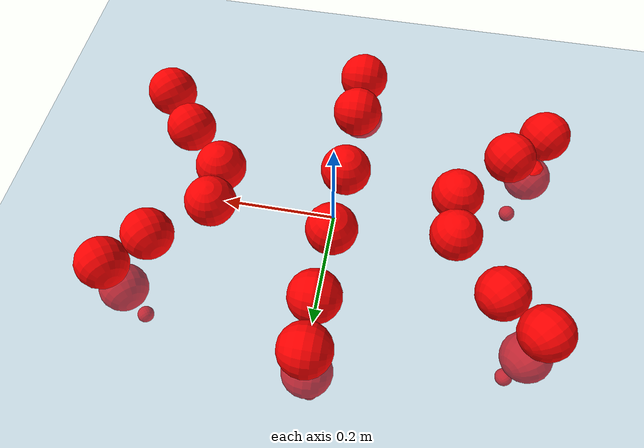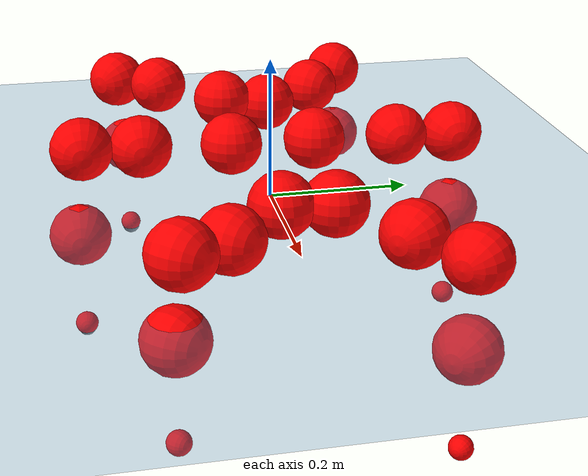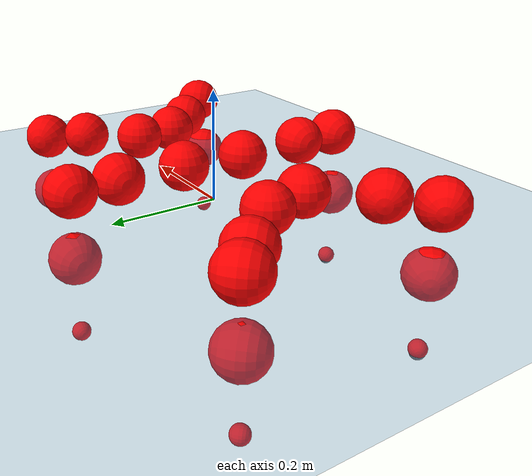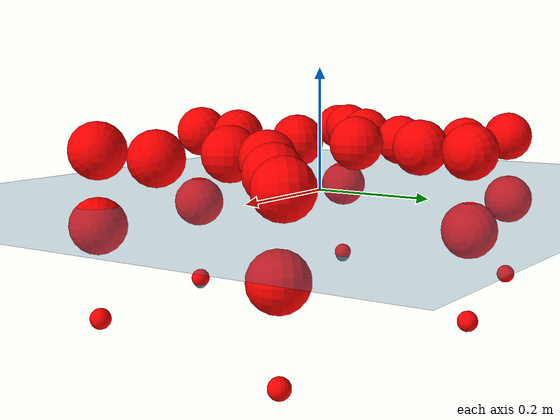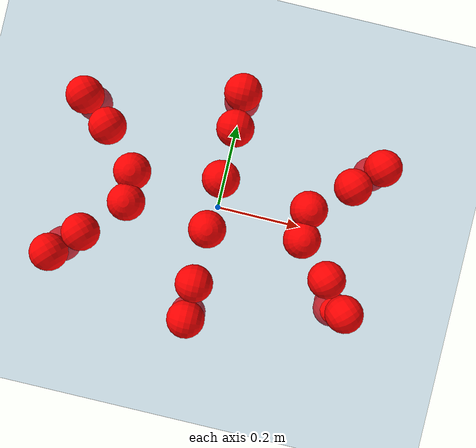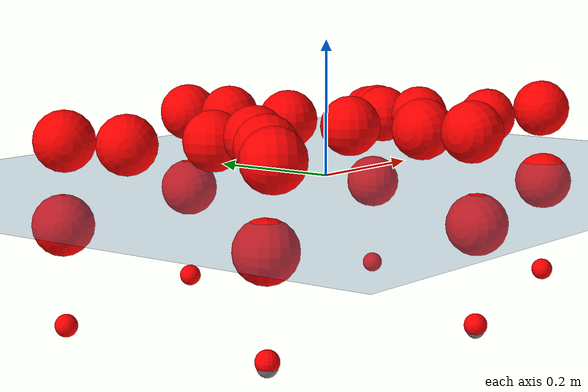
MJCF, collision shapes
<mujoco model="Golem">
  <compiler angle="radian" assetdir="assets" balanceinertia="true" inertiafromgeom="false"/>

  <option timestep="0.005" density="1.2" viscosity="2e-05"/>

  <size nkey="1"/>

  <visual>
    <quality shadowsize="8192"/>
    <map shadowclip="0.5"/>
  </visual>

  <default>
    <default class="/">
      <joint armature="0.01" damping="0.01" frictionloss="0.01"/>
      <geom contype="0" conaffinity="0" group="1" solref="-1000 -80"/>
      <site size="0.01 0.005 0.005" group="5"/>
      <general forcelimited="true" biastype="affine" gainprm="25" biasprm="0 -25 -0.5"/>
      <default class="visual">
        <geom type="mesh" group="2"/>
      </default>
      <default class="collision">
        <geom group="3"/>
      </default>
      <default class="foot">
        <geom size="0.01 0 0" condim="6" group="4" priority="1" solimp="0.015 1 0.01"/>
      </default>
      <default class="reward_collision_sphere">
        <geom group="5" rgba="1 0 0 1"/>
      </default>
    </default>
  </default>

  <asset>
    <texture type="skybox" colorspace="auto" name="//unnamed_texture_0" builtin="gradient" rgb1="0.95 0.95 0.95" rgb2="0.95 0.95 0.95" width="100" height="600"/>
    <texture type="2d" colorspace="auto" name="texplane" builtin="checker" rgb1="0.345 0.575 0.748" rgb2="0.345 0.575 0.748" markrgb="1 1 1" width="512" height="512"/>
    <material name="MatPlane" class="/" texture="texplane" texuniform="true" texrepeat="2 2" specular="0.9"/>
    <mesh name="body" class="/" file="body.stl" scale="0.001 0.001 0.001"/>
    <mesh name="coxa" class="/" file="coxa.stl" scale="0.001 0.001 0.001"/>
    <mesh name="femur" class="/" file="femur.stl" scale="0.001 0.001 0.001"/>
    <mesh name="tibia" class="/" file="tibia.stl" scale="0.001 0.001 0.001"/>
    <mesh name="tarsus" class="/" file="tarsus.stl" scale="0.001 0.001 0.001"/>
  </asset>

  <worldbody>
    <geom name="floor" class="/" size="100 100 0.125" type="plane" group="0" material="MatPlane"/>
    <light name="toplight_shadow" class="/" pos="0 0 5" dir="0.0990148 0.0990148 -0.990148" type="directional" ambient="0.04 0.04 0.04" diffuse="0.55 0.55 0.55" specular="0.12 0.12 0.12"/>
    <light name="toplight_fill" class="/" pos="0 0 5" dir="0.0990148 0.0990148 -0.990148" type="directional" castshadow="false" ambient="0.04 0.04 0.04" diffuse="0.3 0.3 0.3" specular="0.08 0.08 0.08"/>
    <body name="trunk" pos="-0.000273945 -0.000292671 0.00572103" quat="0.999993 -0.000467875 -0.00304979 -0.00229397">
      <inertial pos="-0.002837 0.00293547 -0.00690791" quat="0.999957 0.00664389 0.00581253 -0.00299645" mass="5.51606" diaginertia="0.0411008 0.00295914 0.022292"/>
      <joint name="//unnamed_joint_0" type="free"/>
      <geom name="//unnamed_geom_1" class="/" pos="0 0 0.0751791" quat="1 0 0 0" type="mesh" rgba="0.9 0.9 0.9 1" mesh="body"/>
      <site name="imu" class="/" pos="0.176359 -0.040328 0.0626104" size="0.0108696"/>
      <camera name="track" class="/" pos="0 -1.5386 0" quat="0.707107 0.707107 0 0" mode="trackcom"/>
      <camera name="ego_camera" class="/" pos="0.171196 0 0.117467" quat="-0.5 -0.5 0.5 0.5"/>
      <body name="coxa_RR" pos="-0.231778 -0.0641352 0.0760595" quat="0.385676 -0.00352422 -0.00303918 -0.922623">
        <inertial pos="-0.00691763 -0.00164591 0.00468305" quat="0.999872 0.000742407 0.000650055 -0.0159983" mass="0.232513" diaginertia="0.0408478 0.0024189 0.0193237"/>
        <joint name="coxa_joint_RR" class="/" pos="0 0 0" axis="-0.0155779 -0.00136021 -0.999878" range="-3.20097 3.17055" armature="0.0114959" damping="0.012389" frictionloss="0.00953102"/>
        <geom name="//unnamed_geom_2" class="/" type="mesh" rgba="0.2 0.2 0.2 1" mesh="coxa"/>
        <geom name="//unnamed_geom_3" class="reward_collision_sphere" size="0.0434782" pos="-0.0395069 0 0"/>
        <body name="femur_RR" pos="0.083634 0.0036111 0.00133484" quat="0.496287 -0.500959 0.499624 0.503106">
          <inertial pos="-0.000550664 -0.0107087 -0.00434241" quat="0.999619 -0.0224202 -0.00967743 -0.0128405" mass="0.290303" diaginertia="0.0411696 0.00312375 0.0248718"/>
          <joint name="femur_joint_RR" class="/" pos="0 0 0" axis="0.000925361 0.00130015 -0.999999" stiffness="0.00432994" range="-3.17648 3.17685" armature="0.00673165" damping="0.00329004" frictionloss="0.0105695"/>
          <geom name="//unnamed_geom_4" class="/" type="mesh" rgba="0.9 0.9 0.9 1" mesh="femur"/>
          <geom name="//unnamed_geom_5" class="reward_collision_sphere" size="0.0434782"/>
          <body name="tibia_RR" pos="0.00541046 -0.086514 -0.000498713" quat="-8.85079e-05 1 -0.000618405 -2.35962e-05">
            <inertial pos="-0.00169028 -0.00976129 -2.1034e-05" quat="1 -0.000351771 0.000101276 -0.000859686" mass="0.27194" diaginertia="0.0419759 0.00285422 0.0238026"/>
            <joint name="tibia_joint_RR" class="/" pos="0 0 0" axis="0.0443374 0.0145806 0.99891" stiffness="0.0320989" range="-3.33557 3.13076" armature="0.01366" damping="0.0393238" frictionloss="0.0045612"/>
            <geom name="//unnamed_geom_6" class="/" type="mesh" rgba="0.2 0.2 0.2 1" mesh="tibia"/>
            <geom name="//unnamed_geom_7" class="reward_collision_sphere" size="0.0434782"/>
            <body name="tarsus_RR" pos="0.115615 -0.0070607 0.00982881" quat="0.999998 -0.00213797 7.44531e-05 -0.000518194">
              <inertial pos="0.0756382 0.000197219 -0.00640896" quat="0.500607 0.514497 0.486883 0.497624" mass="0.283794" diaginertia="0.044127 0.00304174 0.0212655"/>
              <joint name="tarsus_joint_RR" class="/" pos="0 0 0" axis="-0.00145595 -0.0284801 0.999593" range="-3.04709 3.11379" armature="0.0120885" damping="0" frictionloss="0.0112971"/>
              <geom name="//unnamed_geom_8" class="/" type="mesh" rgba="0.9 0.9 0.9 1" mesh="tarsus"/>
              <geom name="foot_1" class="foot" size="0.0141641" pos="0.147492 0 0" quat="0 -0.707107 0 0.707107"/>
              <geom name="//unnamed_geom_10" class="reward_collision_sphere" size="0.0434782"/>
              <geom name="//unnamed_geom_11" class="reward_collision_sphere" size="0.0163043" pos="0.141566 0 0"/>
              <site name="foot_1" class="foot" pos="0.147492 0 0" quat="0 -0.707107 0 0.707107" size="0.0108696"/>
            </body>
          </body>
        </body>
      </body>
      <body name="coxa_RM" pos="-0.0111835 -0.0925401 0.072854" quat="0.707474 -0.00011316 -5.62587e-05 -0.706739">
        <inertial pos="0.00145126 0.000558006 0.00821417" quat="0.998509 -0.00820063 -0.00477881 0.0537542" mass="0.232342" diaginertia="0.0348096 0.00203265 0.0175476"/>
        <joint name="coxa_joint_RM" class="/" pos="0 0 0" axis="0.0378666 -0.0348217 -0.998676" stiffness="0.0182339" range="-3.12671 3.22534" armature="0.0115243" damping="0.012638" frictionloss="0.00768691"/>
        <geom name="//unnamed_geom_12" class="/" type="mesh" rgba="0.2 0.2 0.2 1" mesh="coxa"/>
        <geom name="//unnamed_geom_13" class="reward_collision_sphere" size="0.0434782" pos="-0.0395069 0 0"/>
        <body name="femur_RM" pos="0.0866576 -9.95368e-05 0.00449815" quat="0.500167 -0.500314 0.50031 0.499208">
          <inertial pos="0.00107513 -0.00671456 0.00167929" quat="0.999999 0.000913624 -0.0012672 0.000510753" mass="0.245483" diaginertia="0.0442709 0.00266686 0.0237459"/>
          <joint name="femur_joint_RM" class="/" pos="0 0 0" axis="0.00298034 0.00470037 -0.999985" stiffness="0.0356605" range="-3.29447 3.05858" armature="0.00739089" damping="0.0130914" frictionloss="0.00600979"/>
          <geom name="//unnamed_geom_14" class="/" type="mesh" rgba="0.9 0.9 0.9 1" mesh="femur"/>
          <geom name="//unnamed_geom_15" class="reward_collision_sphere" size="0.0434782"/>
          <body name="tibia_RM" pos="-0.0019604 -0.0816317 0.000389555" quat="-0.000606616 1 -0.000189873 -0.000297855">
            <inertial pos="0.00169081 -4.96852e-05 -0.00719921" quat="1 0.000519015 -0.000456905 -0.000169541" mass="0.225938" diaginertia="0.0387497 0.00265156 0.0235153"/>
            <joint name="tibia_joint_RM" class="/" pos="0 0 0" axis="-0.0453064 0.0156399 0.998851" range="-3.19931 3.01519" armature="0.0162754" damping="0.0136692" frictionloss="0.00562601"/>
            <geom name="//unnamed_geom_16" class="/" type="mesh" rgba="0.2 0.2 0.2 1" mesh="tibia"/>
            <geom name="//unnamed_geom_17" class="reward_collision_sphere" size="0.0434782"/>
            <body name="tarsus_RM" pos="0.127478 0.00872102 -0.000517863" quat="0.999995 0.00218325 -0.00214003 -0.00110061">
              <inertial pos="0.08117 -9.08481e-05 0.00166341" quat="0.505767 0.495006 0.496646 0.502505" mass="0.206047" diaginertia="0.0341826 0.00236471 0.0195272"/>
              <joint name="tarsus_joint_RM" class="/" pos="0 0 0" axis="0.00381386 0.0133043 0.999904" stiffness="0.0001486" range="-3.18788 3.14459" armature="0.0128158" damping="0" frictionloss="0.0105368"/>
              <geom name="//unnamed_geom_18" class="/" type="mesh" rgba="0.9 0.9 0.9 1" mesh="tarsus"/>
              <geom name="foot_2" class="foot" size="0.0130166" pos="0.147492 0 0" quat="0 -0.707107 0 0.707107"/>
              <geom name="//unnamed_geom_20" class="reward_collision_sphere" size="0.0434782"/>
              <geom name="//unnamed_geom_21" class="reward_collision_sphere" size="0.0163043" pos="0.141566 0 0"/>
              <site name="foot_2" class="foot" pos="0.147492 0 0" quat="0 -0.707107 0 0.707107" size="0.0108696"/>
            </body>
          </body>
        </body>
      </body>
      <body name="coxa_RF" pos="0.231672 -0.0534973 0.067706" quat="0.923603 0.000242231 0.000213152 -0.383351">
        <inertial pos="0.00998859 0.00160722 0.00714164" quat="0.999631 0.0271245 0.000883794 0.00146797" mass="0.247738" diaginertia="0.0332012 0.00231671 0.0189166"/>
        <joint name="coxa_joint_RF" class="/" pos="0 0 0" axis="-0.000648268 0.00107373 -0.999999" stiffness="0.0373157" range="-3.10864 3.24963" armature="0.0107651" damping="0" frictionloss="0.00591867"/>
        <geom name="//unnamed_geom_22" class="/" type="mesh" rgba="0.2 0.2 0.2 1" mesh="coxa"/>
        <geom name="//unnamed_geom_23" class="reward_collision_sphere" size="0.0434782" pos="-0.0395069 0 0"/>
        <body name="femur_RF" pos="0.0687443 0.00101551 -0.0051424" quat="0.500153 -0.502626 0.500043 0.497163">
          <inertial pos="0.00054307 0.00157317 0.000791931" quat="0.999746 0.0140508 0.0161357 0.00709215" mass="0.250745" diaginertia="0.0432222 0.00284575 0.0238977"/>
          <joint name="femur_joint_RF" class="/" pos="0 0 0" axis="-0.00527063 -0.00898179 -0.999946" range="-3.2105 3.15387" armature="0.0110305" damping="0.0168421" frictionloss="0.0113534"/>
          <geom name="//unnamed_geom_24" class="/" type="mesh" rgba="0.9 0.9 0.9 1" mesh="femur"/>
          <geom name="//unnamed_geom_25" class="reward_collision_sphere" size="0.0434782"/>
          <body name="tibia_RF" pos="-0.0117053 -0.0841225 -0.00797841" quat="3.08048e-05 0.999999 0.000690126 0.00107474">
            <inertial pos="-0.00205047 0.00940724 0.00757315" quat="0.998998 0.0277673 -0.016521 -0.0309526" mass="0.281652" diaginertia="0.0465839 0.00309243 0.0221947"/>
            <joint name="tibia_joint_RF" class="/" pos="0 0 0" axis="-0.0399797 0.0196354 0.999008" stiffness="0.0572418" range="-3.06019 3.16588" armature="0.0118796" damping="0.0376867" frictionloss="0.0136427"/>
            <geom name="//unnamed_geom_26" class="/" type="mesh" rgba="0.2 0.2 0.2 1" mesh="tibia"/>
            <geom name="//unnamed_geom_27" class="reward_collision_sphere" size="0.0434782"/>
            <body name="tarsus_RF" pos="0.112745 0.00171042 0.0103955" quat="1 -2.55508e-05 3.70971e-05 2.82716e-05">
              <inertial pos="0.0784421 0.000214617 -0.00128593" quat="0.490923 0.502627 0.499802 0.506516" mass="0.274014" diaginertia="0.0432787 0.00310148 0.0235324"/>
              <joint name="tarsus_joint_RF" class="/" pos="0 0 0" axis="-0.0391524 0.0388616 0.998477" range="-3.1508 3.14629" armature="0.0121204" damping="0.010479" frictionloss="0.00828663"/>
              <geom name="//unnamed_geom_28" class="/" type="mesh" rgba="0.9 0.9 0.9 1" mesh="tarsus"/>
              <geom name="foot_3" class="foot" size="0.00934129" pos="0.147492 0 0" quat="0 -0.707107 0 0.707107"/>
              <geom name="//unnamed_geom_30" class="reward_collision_sphere" size="0.0434782"/>
              <geom name="//unnamed_geom_31" class="reward_collision_sphere" size="0.0163043" pos="0.141566 0 0"/>
              <site name="foot_3" class="foot" pos="0.147492 0 0" quat="0 -0.707107 0 0.707107" size="0.0108696"/>
            </body>
          </body>
        </body>
      </body>
      <body name="coxa_LR" pos="-0.236603 0.0626015 0.0652102" quat="0.385231 0.00204977 0.00246858 0.922815">
        <inertial pos="0.00399033 -0.00774723 0.00842677" quat="0.999999 -0.000164315 -0.000269634 0.00102717" mass="0.251663" diaginertia="0.040452 0.00289674 0.0224637"/>
        <joint name="coxa_joint_LR" class="/" pos="0 0 0" axis="-0.0114534 -0.0333661 -0.999378" range="-3.06919 2.95429" armature="0.0101396" damping="0.0159714" frictionloss="0.00729539"/>
        <geom name="//unnamed_geom_32" class="/" type="mesh" rgba="0.2 0.2 0.2 1" mesh="coxa"/>
        <geom name="//unnamed_geom_33" class="reward_collision_sphere" size="0.0434782" pos="-0.0395069 0 0"/>
        <body name="femur_LR" pos="0.0795831 -0.00480418 -0.00426355" quat="0.499833 -0.498966 0.500888 0.50031">
          <inertial pos="0.00109715 -0.00648227 -0.0018638" quat="0.998732 -0.0327927 0.0218761 0.031307" mass="0.270791" diaginertia="0.036458 0.00277614 0.0241978"/>
          <joint name="femur_joint_LR" class="/" pos="0 0 0" axis="0.0177977 0.0576864 0.998176" range="-3.06312 3.08619" armature="0.00510685" damping="0" frictionloss="0.0118263"/>
          <geom name="//unnamed_geom_34" class="/" type="mesh" rgba="0.9 0.9 0.9 1" mesh="femur"/>
          <geom name="//unnamed_geom_35" class="reward_collision_sphere" size="0.0434782"/>
          <body name="tibia_LR" pos="-0.00813585 -0.0848593 0.00682188" quat="0.00104535 0.999999 0.000118466 0.000272048">
            <inertial pos="0.00419033 -0.00216136 -0.00744649" quat="0.999508 0.0195224 -0.0110165 -0.0219604" mass="0.226269" diaginertia="0.0392448 0.00255626 0.0230347"/>
            <joint name="tibia_joint_LR" class="/" pos="0 0 0" axis="-0.00794681 -0.000428591 -0.999968" stiffness="0.00389654" range="-3.34153 3.00574" armature="0.0153181" damping="0.0145911" frictionloss="0.0106651"/>
            <geom name="//unnamed_geom_36" class="/" type="mesh" rgba="0.2 0.2 0.2 1" mesh="tibia"/>
            <geom name="//unnamed_geom_37" class="reward_collision_sphere" size="0.0434782"/>
            <body name="tarsus_LR" pos="0.116194 0.00459073 -0.000339173" quat="1 -0.000114232 -2.34597e-05 -0.000217511">
              <inertial pos="0.0779945 0.00866997 -4.26657e-06" quat="0.499909 0.498995 0.501947 0.499143" mass="0.294264" diaginertia="0.0406344 0.00236438 0.0216589"/>
              <joint name="tarsus_joint_LR" class="/" pos="0 0 0" axis="0.00498888 -0.00357103 -0.999981" range="-3.13387 3.03376" armature="0.0107277" damping="0.0224278" frictionloss="0.0136329"/>
              <geom name="//unnamed_geom_38" class="/" type="mesh" rgba="0.9 0.9 0.9 1" mesh="tarsus"/>
              <geom name="foot_4" class="foot" size="0.00880173" pos="0.147492 0 0" quat="0.707107 0 -0.707107 0"/>
              <geom name="//unnamed_geom_40" class="reward_collision_sphere" size="0.0434782"/>
              <geom name="//unnamed_geom_41" class="reward_collision_sphere" size="0.0163043" pos="0.141566 0 0"/>
              <site name="foot_4" class="foot" pos="0.147492 0 0" quat="0.707107 0 -0.707107 0" size="0.0108696"/>
            </body>
          </body>
        </body>
      </body>
      <body name="coxa_LM" pos="-0.0077045 0.104457 0.0741448" quat="0.706994 0.000423281 5.28996e-05 0.70722">
        <inertial pos="0.000811353 0.00124357 0.00984665" quat="1 -0.00010774 9.7502e-05 2.82814e-05" mass="0.26176" diaginertia="0.0372243 0.00259986 0.0217896"/>
        <joint name="coxa_joint_LM" class="/" pos="0 0 0" axis="0.0221706 0.00310566 -0.999749" stiffness="0.00171217" range="-3.14265 3.09812" armature="0.00967568" damping="0.0407441" frictionloss="0.01107"/>
        <geom name="//unnamed_geom_42" class="/" type="mesh" rgba="0.2 0.2 0.2 1" mesh="coxa"/>
        <geom name="//unnamed_geom_43" class="reward_collision_sphere" size="0.0434782" pos="-0.0395069 0 0"/>
        <body name="femur_LM" pos="0.0797189 -0.00461756 -0.000642875" quat="0.500157 -0.500208 0.499146 0.500488">
          <inertial pos="0.00671711 -0.00031339 0.0112894" quat="0.9994 0.00926676 0.0322612 -0.00858985" mass="0.26892" diaginertia="0.0414437 0.00284294 0.0238852"/>
          <joint name="femur_joint_LM" class="/" pos="0 0 0" axis="0.0197407 0.0115648 0.999738" range="-3.15763 3.35688" armature="0.0134629" damping="0.0319231" frictionloss="0.0152736"/>
          <geom name="//unnamed_geom_44" class="/" type="mesh" rgba="0.9 0.9 0.9 1" mesh="femur"/>
          <geom name="//unnamed_geom_45" class="reward_collision_sphere" size="0.0434782"/>
          <body name="tibia_LM" pos="0.00244585 -0.0835183 0.00163639" quat="9.27346e-05 0.999998 -0.00192118 -0.000582941">
            <inertial pos="-0.00340771 0.00195031 -0.000789497" quat="0.999999 0.000453819 -0.000536485 -0.000868754" mass="0.277001" diaginertia="0.0451691 0.00303979 0.0252776"/>
            <joint name="tibia_joint_LM" class="/" pos="0 0 0" axis="0.00320825 0.0402611 -0.999184" range="-3.29544 3.22474" armature="0.00458607" damping="0.0475639" frictionloss="0.00669451"/>
            <geom name="//unnamed_geom_46" class="/" type="mesh" rgba="0.2 0.2 0.2 1" mesh="tibia"/>
            <geom name="//unnamed_geom_47" class="reward_collision_sphere" size="0.0434782"/>
            <body name="tarsus_LM" pos="0.119186 0.00150837 0.000832652" quat="1 -0.000158551 -0.00079822 0.000280181">
              <inertial pos="0.0824937 0.0061368 0.001996" quat="0.496771 0.512234 0.484368 0.506185" mass="0.287558" diaginertia="0.045957 0.00354299 0.0263447"/>
              <joint name="tarsus_joint_LM" class="/" pos="0 0 0" axis="-0.0225921 -0.010978 -0.999684" range="-3.13412 3.1347" armature="0.0112731" damping="0" frictionloss="0.00503545"/>
              <geom name="//unnamed_geom_48" class="/" type="mesh" rgba="0.9 0.9 0.9 1" mesh="tarsus"/>
              <geom name="foot_5" class="foot" size="0.0089224" pos="0.147492 0 0" quat="0.707107 0 -0.707107 0"/>
              <geom name="//unnamed_geom_50" class="reward_collision_sphere" size="0.0434782"/>
              <geom name="//unnamed_geom_51" class="reward_collision_sphere" size="0.0163043" pos="0.141566 0 0"/>
              <site name="foot_5" class="foot" pos="0.147492 0 0" quat="0.707107 0 -0.707107 0" size="0.0108696"/>
            </body>
          </body>
        </body>
      </body>
      <body name="coxa_LF" pos="0.23165 0.0723278 0.0638534" quat="0.924047 -0.00108795 -4.31308e-05 0.382278">
        <inertial pos="0.00971254 0.0114081 0.00634669" quat="0.999971 -0.00597549 -0.00414566 0.00212272" mass="0.274766" diaginertia="0.0434817 0.00336 0.0222651"/>
        <joint name="coxa_joint_LF" class="/" pos="0 0 0" axis="-0.0169285 0.0453276 -0.998829" stiffness="0.0023583" range="-3.04438 3.1321" armature="0.00999948" damping="0.000929075" frictionloss="0.0146932"/>
        <geom name="//unnamed_geom_52" class="/" type="mesh" rgba="0.2 0.2 0.2 1" mesh="coxa"/>
        <geom name="//unnamed_geom_53" class="reward_collision_sphere" size="0.0434782" pos="-0.0395069 0 0"/>
        <body name="femur_LF" pos="0.0754589 -0.00907165 -0.00860166" quat="0.502776 -0.500106 0.498732 0.498374">
          <inertial pos="0.000566001 0.0049964 -0.00178658" quat="0.999998 -0.000914421 0.00149289 -0.000874257" mass="0.27859" diaginertia="0.0495243 0.00297314 0.0247648"/>
          <joint name="femur_joint_LF" class="/" pos="0 0 0" axis="0.0224799 0.0411004 0.998902" stiffness="0.00353808" range="-3.0642 2.99297" armature="0.0108186" damping="0.0127102" frictionloss="0.00990928"/>
          <geom name="//unnamed_geom_54" class="/" type="mesh" rgba="0.9 0.9 0.9 1" mesh="femur"/>
          <geom name="//unnamed_geom_55" class="reward_collision_sphere" size="0.0434782"/>
          <body name="tibia_LF" pos="0.0103245 -0.0838065 0.00052105" quat="-0.000706747 0.999998 -0.000321218 0.00202966">
            <inertial pos="-0.00529101 -0.0090832 0.00432197" quat="0.999973 0.00392511 -0.0016524 -0.00595074" mass="0.241836" diaginertia="0.0431063 0.00266299 0.0240403"/>
            <joint name="tibia_joint_LF" class="/" pos="0 0 0" axis="0.0061415 0.0280169 -0.999589" stiffness="0.0499772" range="-3.10968 3.28676" armature="0.0120542" damping="0.0351195" frictionloss="0.0101857"/>
            <geom name="//unnamed_geom_56" class="/" type="mesh" rgba="0.2 0.2 0.2 1" mesh="tibia"/>
            <geom name="//unnamed_geom_57" class="reward_collision_sphere" size="0.0434782"/>
            <body name="tarsus_LF" pos="0.119709 -0.00187508 0.00704924" quat="1 4.82794e-06 -0.000140473 -0.000350193">
              <inertial pos="0.0906191 -0.000431793 0.00121152" quat="0.547279 0.495249 0.485727 0.468277" mass="0.2644" diaginertia="0.040022 0.00265581 0.021904"/>
              <joint name="tarsus_joint_LF" class="/" pos="0 0 0" axis="-0.0541433 -0.0265224 -0.998181" range="-3.21796 3.26923" armature="0.0114978" damping="0.0410138" frictionloss="0.0128385"/>
              <geom name="//unnamed_geom_58" class="/" type="mesh" rgba="0.9 0.9 0.9 1" mesh="tarsus"/>
              <geom name="foot_6" class="foot" size="0.00992287" pos="0.147492 0 0" quat="0.707107 0 -0.707107 0"/>
              <geom name="//unnamed_geom_60" class="reward_collision_sphere" size="0.0434782"/>
              <geom name="//unnamed_geom_61" class="reward_collision_sphere" size="0.0163043" pos="0.141566 0 0"/>
              <site name="foot_6" class="foot" pos="0.147492 0 0" quat="0.707107 0 -0.707107 0" size="0.0108696"/>
            </body>
          </body>
        </body>
      </body>
    </body>
  </worldbody>

  <contact>
    <pair class="/" geom1="floor" geom2="foot_1" name="//unnamed_contact_0"/>
    <pair class="/" geom1="floor" geom2="foot_2" name="//unnamed_contact_1"/>
    <pair class="/" geom1="floor" geom2="foot_3" name="//unnamed_contact_2"/>
    <pair class="/" geom1="floor" geom2="foot_4" name="//unnamed_contact_3"/>
    <pair class="/" geom1="floor" geom2="foot_5" name="//unnamed_contact_4"/>
    <pair class="/" geom1="floor" geom2="foot_6" name="//unnamed_contact_5"/>
  </contact>

  <actuator>
    <general name="coxa_joint_RR" class="/" joint="coxa_joint_RR" forcerange="-7.95212 7.95212" gainprm="24.3525" biasprm="0 -24.3525 -0.504284"/>
    <general name="femur_joint_RR" class="/" joint="femur_joint_RR" forcerange="-7.58308 7.58308" gainprm="24.3525" biasprm="0 -24.3525 -0.504284"/>
    <general name="tibia_joint_RR" class="/" joint="tibia_joint_RR" forcerange="-7.6055 7.6055" gainprm="24.3525" biasprm="0 -24.3525 -0.504284"/>
    <general name="tarsus_joint_RR" class="/" joint="tarsus_joint_RR" forcerange="-5.64852 5.64852" gainprm="24.3525" biasprm="0 -24.3525 -0.504284"/>
    <general name="coxa_joint_RM" class="/" joint="coxa_joint_RM" forcerange="-8.74687 8.74687" gainprm="24.3525" biasprm="0 -24.3525 -0.504284"/>
    <general name="femur_joint_RM" class="/" joint="femur_joint_RM" forcerange="-5.61781 5.61781" gainprm="24.3525" biasprm="0 -24.3525 -0.504284"/>
    <general name="tibia_joint_RM" class="/" joint="tibia_joint_RM" forcerange="-7.49108 7.49108" gainprm="24.3525" biasprm="0 -24.3525 -0.504284"/>
    <general name="tarsus_joint_RM" class="/" joint="tarsus_joint_RM" forcerange="-7.00359 7.00359" gainprm="24.3525" biasprm="0 -24.3525 -0.504284"/>
    <general name="coxa_joint_RF" class="/" joint="coxa_joint_RF" forcerange="-10.2117 10.2117" gainprm="24.3525" biasprm="0 -24.3525 -0.504284"/>
    <general name="femur_joint_RF" class="/" joint="femur_joint_RF" forcerange="-8.1283 8.1283" gainprm="24.3525" biasprm="0 -24.3525 -0.504284"/>
    <general name="tibia_joint_RF" class="/" joint="tibia_joint_RF" forcerange="-7.27843 7.27843" gainprm="24.3525" biasprm="0 -24.3525 -0.504284"/>
    <general name="tarsus_joint_RF" class="/" joint="tarsus_joint_RF" forcerange="-8.0348 8.0348" gainprm="24.3525" biasprm="0 -24.3525 -0.504284"/>
    <general name="coxa_joint_LR" class="/" joint="coxa_joint_LR" forcerange="-8.36235 8.36235" gainprm="24.3525" biasprm="0 -24.3525 -0.504284"/>
    <general name="femur_joint_LR" class="/" joint="femur_joint_LR" forcerange="-8.0526 8.0526" gainprm="24.3525" biasprm="0 -24.3525 -0.504284"/>
    <general name="tibia_joint_LR" class="/" joint="tibia_joint_LR" forcerange="-7.58339 7.58339" gainprm="24.3525" biasprm="0 -24.3525 -0.504284"/>
    <general name="tarsus_joint_LR" class="/" joint="tarsus_joint_LR" forcerange="-8.4331 8.4331" gainprm="24.3525" biasprm="0 -24.3525 -0.504284"/>
    <general name="coxa_joint_LM" class="/" joint="coxa_joint_LM" forcerange="-8.05556 8.05556" gainprm="24.3525" biasprm="0 -24.3525 -0.504284"/>
    <general name="femur_joint_LM" class="/" joint="femur_joint_LM" forcerange="-7.94523 7.94523" gainprm="24.3525" biasprm="0 -24.3525 -0.504284"/>
    <general name="tibia_joint_LM" class="/" joint="tibia_joint_LM" forcerange="-7.77935 7.77935" gainprm="24.3525" biasprm="0 -24.3525 -0.504284"/>
    <general name="tarsus_joint_LM" class="/" joint="tarsus_joint_LM" forcerange="-7.07059 7.07059" gainprm="24.3525" biasprm="0 -24.3525 -0.504284"/>
    <general name="coxa_joint_LF" class="/" joint="coxa_joint_LF" forcerange="-9.21712 9.21712" gainprm="24.3525" biasprm="0 -24.3525 -0.504284"/>
    <general name="femur_joint_LF" class="/" joint="femur_joint_LF" forcerange="-7.9707 7.9707" gainprm="24.3525" biasprm="0 -24.3525 -0.504284"/>
    <general name="tibia_joint_LF" class="/" joint="tibia_joint_LF" forcerange="-8.31335 8.31335" gainprm="24.3525" biasprm="0 -24.3525 -0.504284"/>
    <general name="tarsus_joint_LF" class="/" joint="tarsus_joint_LF" forcerange="-8.14372 8.14372" gainprm="24.3525" biasprm="0 -24.3525 -0.504284"/>
  </actuator>

  <sensor>
    <gyro site="imu" name="imu_angular_velocity"/>
    <velocimeter site="imu" name="imu_linear_velocity"/>
    <framelinvel objtype="site" objname="foot_1" name="foot_1_global_linear_velocity"/>
    <framelinvel objtype="site" objname="foot_2" name="foot_2_global_linear_velocity"/>
    <framelinvel objtype="site" objname="foot_3" name="foot_3_global_linear_velocity"/>
    <framelinvel objtype="site" objname="foot_4" name="foot_4_global_linear_velocity"/>
    <framelinvel objtype="site" objname="foot_5" name="foot_5_global_linear_velocity"/>
    <framelinvel objtype="site" objname="foot_6" name="foot_6_global_linear_velocity"/>
  </sensor>

  <keyframe>
    <key name="home" qpos="0 0 0.1457 1 0 0 0 0 0 0 0 0 0 0 0 0 0 0 0 0 0 0 0 0 0 0 0 0 0 0 0"/>
  </keyframe>
</mujoco>
